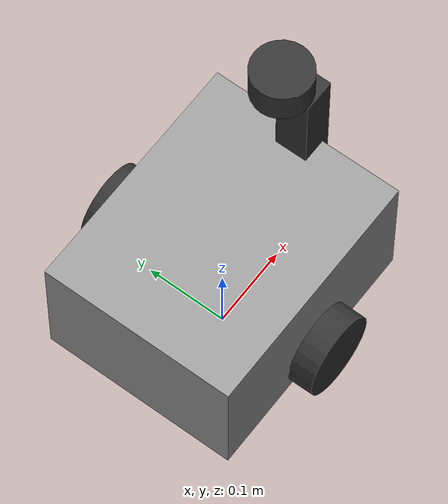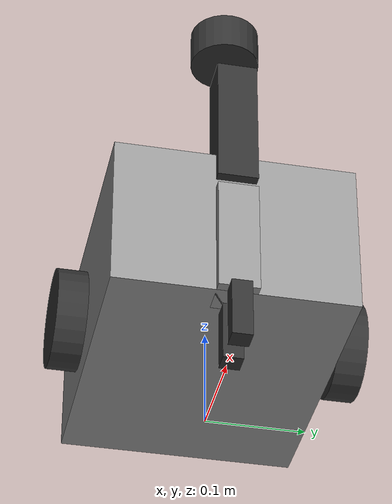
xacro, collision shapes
<?xml version="1.0"?>
<robot name="astronaut_robot" xmlns:xacro="http://www.ros.org/wiki/xacro">

  <material name="grey"><color rgba="0.6 0.6 0.6 1"/></material>
  <material name="dark"><color rgba="0.2 0.2 0.2 1"/></material>

  <!-- ===================== BASE ===================== -->
  <link name="base_footprint"/>

  <link name="base_link">
    <visual>
      <origin xyz="0 0 0.08" rpy="0 0 0"/>
      <geometry><box size="0.30 0.24 0.16"/></geometry>
      <material name="grey"/>
    </visual>
    <collision>
      <origin xyz="0 0 0.08" rpy="0 0 0"/>
      <geometry><box size="0.30 0.24 0.16"/></geometry>
    </collision>
    <inertial>
      <mass value="4.0"/>
      <origin xyz="0 0 0.08"/>
      <inertia ixx="0.03" ixy="0" ixz="0" iyy="0.03" iyz="0" izz="0.03"/>
    </inertial>
  </link>

  <joint name="base_footprint_joint" type="fixed">
    <parent link="base_footprint"/>
    <child link="base_link"/>
    <origin xyz="0 0 0.05" rpy="0 0 0"/>
  </joint>

  <!-- Astronaut mesh: pure visual skin, no collision, rides on top of the chassis -->
  <link name="astronaut_visual_link">
    <visual>
      <origin xyz="0 0 0" rpy="1.5708 0 0"/>
      <geometry>
        <mesh filename="package://astronaut_robot/meshes/cute_astronaut.glb" scale="1 1 1"/>
      </geometry>
    </visual>
  </link>

  <joint name="astronaut_visual_joint" type="fixed">
    <parent link="base_link"/>
    <child link="astronaut_visual_link"/>
    <origin xyz="0 0 0.16" rpy="0 0 0"/>
  </joint>

  <!-- Wheels -->
  <xacro:macro name="wheel" params="prefix y_offset">
    <link name="${prefix}_wheel">
      <visual>
        <origin xyz="0 0 0" rpy="1.5708 0 0"/>
        <geometry><cylinder radius="0.05" length="0.03"/></geometry>
        <material name="dark"/>
      </visual>
      <collision>
        <origin xyz="0 0 0" rpy="1.5708 0 0"/>
        <geometry><cylinder radius="0.05" length="0.03"/></geometry>
      </collision>
      <inertial>
        <mass value="0.3"/>
        <inertia ixx="0.0005" ixy="0" ixz="0" iyy="0.0005" iyz="0" izz="0.0005"/>
      </inertial>
    </link>
    <joint name="${prefix}_wheel_joint" type="continuous">
      <parent link="base_link"/>
      <child link="${prefix}_wheel"/>
      <origin xyz="0 ${y_offset} 0.05" rpy="0 0 0"/>
      <axis xyz="0 1 0"/>
    </joint>
  </xacro:macro>

  <xacro:wheel prefix="left" y_offset="0.14"/>
  <xacro:wheel prefix="right" y_offset="-0.14"/>

  <link name="caster_wheel">
    <visual><geometry><sphere radius="0.03"/></geometry></visual>
    <collision><geometry><sphere radius="0.03"/></geometry></collision>
    <inertial><mass value="0.1"/><inertia ixx="0.0001" ixy="0" ixz="0" iyy="0.0001" iyz="0" izz="0.0001"/></inertial>
  </link>
  <joint name="caster_joint" type="fixed">
    <parent link="base_link"/>
    <child link="caster_wheel"/>
    <origin xyz="0.12 0 0.03" rpy="0 0 0"/>
  </joint>

  <!-- ===================== LIDAR (required for obstacle detection + AMCL/costmaps) ===================== -->
  <link name="lidar_link">
    <visual>
      <geometry><cylinder radius="0.035" length="0.04"/></geometry>
      <material name="dark"/>
    </visual>
    <collision>
      <geometry><cylinder radius="0.035" length="0.04"/></geometry>
    </collision>
    <inertial>
      <mass value="0.1"/>
      <inertia ixx="0.0001" ixy="0" ixz="0" iyy="0.0001" iyz="0" izz="0.0001"/>
    </inertial>
  </link>

  <joint name="lidar_joint" type="fixed">
    <parent link="base_link"/>
    <child link="lidar_link"/>
    <!-- mounted at the front-top of the chassis, above the astronaut mesh's hips
         so it isn't blocked by the model's own body -->
    <origin xyz="0.10 0 0.34" rpy="0 0 0"/>
  </joint>

  <gazebo reference="lidar_link">
    <sensor name="lidar" type="gpu_lidar">
      <pose>0 0 0 0 0 0</pose>
      <topic>scan</topic>
      <update_rate>10</update_rate>
      <ray>
        <scan>
          <horizontal>
            <samples>360</samples>
            <resolution>1</resolution>
            <min_angle>-3.14159</min_angle>
            <max_angle>3.14159</max_angle>
          </horizontal>
        </scan>
        <range>
          <min>0.12</min>
          <max>10.0</max>
          <resolution>0.01</resolution>
        </range>
      </ray>
      <always_on>true</always_on>
      <visualize>true</visualize>
    </sensor>
  </gazebo>

  <!-- ===================== ARM (2 joints, deliberately basic) ===================== -->
  <link name="shoulder_link">
    <visual><geometry><box size="0.04 0.04 0.14"/></geometry><material name="dark"/></visual>
    <collision><geometry><box size="0.04 0.04 0.14"/></geometry></collision>
    <inertial><mass value="0.3"/><inertia ixx="0.001" ixy="0" ixz="0" iyy="0.001" iyz="0" izz="0.001"/></inertial>
  </link>

  <joint name="shoulder_joint" type="revolute">
    <parent link="base_link"/>
    <child link="shoulder_link"/>
    <origin xyz="0.14 0 0.20" rpy="0 0 0"/>
    <axis xyz="0 1 0"/>
    <limit lower="-1.57" upper="1.57" effort="10" velocity="1.0"/>
  </joint>

  <link name="forearm_link">
    <visual><geometry><box size="0.04 0.04 0.12"/></geometry><material name="grey"/></visual>
    <collision><geometry><box size="0.04 0.04 0.12"/></geometry></collision>
    <inertial><mass value="0.2"/><inertia ixx="0.0005" ixy="0" ixz="0" iyy="0.0005" iyz="0" izz="0.0005"/></inertial>
  </link>

  <joint name="elbow_joint" type="revolute">
    <parent link="shoulder_link"/>
    <child link="forearm_link"/>
    <origin xyz="0 0 -0.14" rpy="0 0 0"/>
    <axis xyz="0 1 0"/>
    <limit lower="-2.0" upper="0.2" effort="10" velocity="1.0"/>
  </joint>

  <!-- Gripper: 1 moving finger against 1 fixed finger, driven by a single prismatic joint -->
  <link name="gripper_fixed_finger">
    <visual><geometry><box size="0.02 0.02 0.06"/></geometry><material name="dark"/></visual>
    <collision><geometry><box size="0.02 0.02 0.06"/></geometry></collision>
    <inertial><mass value="0.05"/><inertia ixx="0.0001" ixy="0" ixz="0" iyy="0.0001" iyz="0" izz="0.0001"/></inertial>
  </link>
  <joint name="gripper_fixed_joint" type="fixed">
    <parent link="forearm_link"/>
    <child link="gripper_fixed_finger"/>
    <origin xyz="0.02 0 -0.09" rpy="0 0 0"/>
  </joint>

  <link name="gripper_moving_finger">
    <visual><geometry><box size="0.02 0.02 0.06"/></geometry><material name="dark"/></visual>
    <collision><geometry><box size="0.02 0.02 0.06"/></geometry></collision>
    <inertial><mass value="0.05"/><inertia ixx="0.0001" ixy="0" ixz="0" iyy="0.0001" iyz="0" izz="0.0001"/></inertial>
  </link>
  <joint name="gripper_joint" type="prismatic">
    <parent link="forearm_link"/>
    <child link="gripper_moving_finger"/>
    <origin xyz="-0.02 0 -0.09" rpy="0 0 0"/>
    <axis xyz="1 0 0"/>
    <limit lower="0.0" upper="0.04" effort="5" velocity="0.2"/>
  </joint>

  <!-- ===================== ros2_control ===================== -->
  <ros2_control name="astronaut_robot_system" type="system">
    <hardware>
      <plugin>gz_ros2_control/GazeboSimSystem</plugin>
    </hardware>
    <joint name="left_wheel_joint">
      <command_interface name="velocity"/>
      <state_interface name="velocity"/>
      <state_interface name="position"/>
    </joint>
    <joint name="right_wheel_joint">
      <command_interface name="velocity"/>
      <state_interface name="velocity"/>
      <state_interface name="position"/>
    </joint>
    <joint name="shoulder_joint">
      <command_interface name="position"/>
      <state_interface name="position"/>
      <state_interface name="velocity"/>
    </joint>
    <joint name="elbow_joint">
      <command_interface name="position"/>
      <state_interface name="position"/>
      <state_interface name="velocity"/>
    </joint>
    <joint name="gripper_joint">
      <command_interface name="position"/>
      <state_interface name="position"/>
      <state_interface name="velocity"/>
    </joint>
  </ros2_control>

  <gazebo>
    <plugin filename="gz_ros2_control-system" name="gz_ros2_control::GazeboSimROS2ControlPlugin">
      <parameters>$(find astronaut_robot)/config/controllers.yaml</parameters>
    </plugin>
  </gazebo>

</robot>
